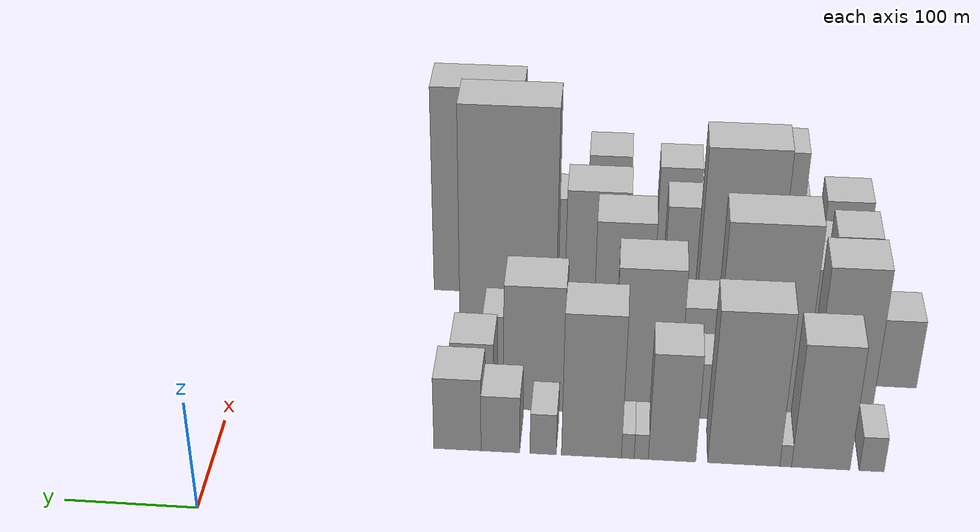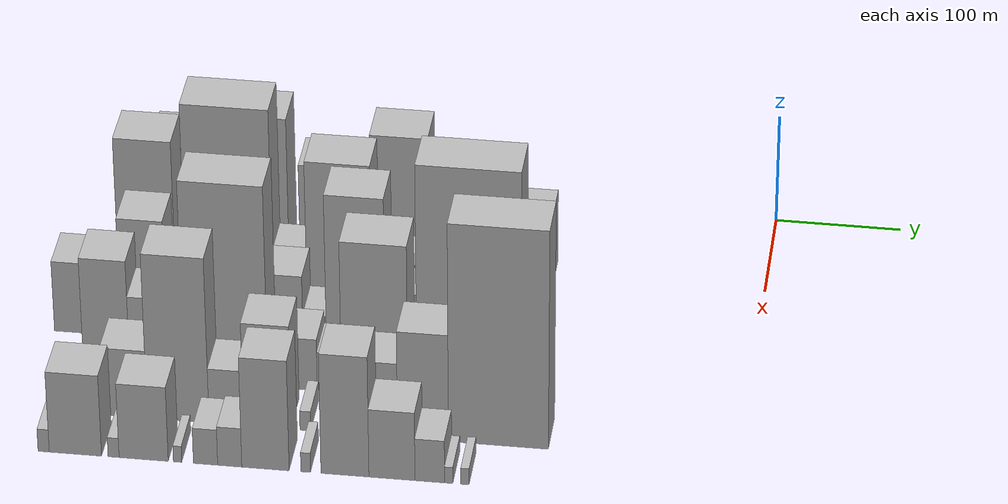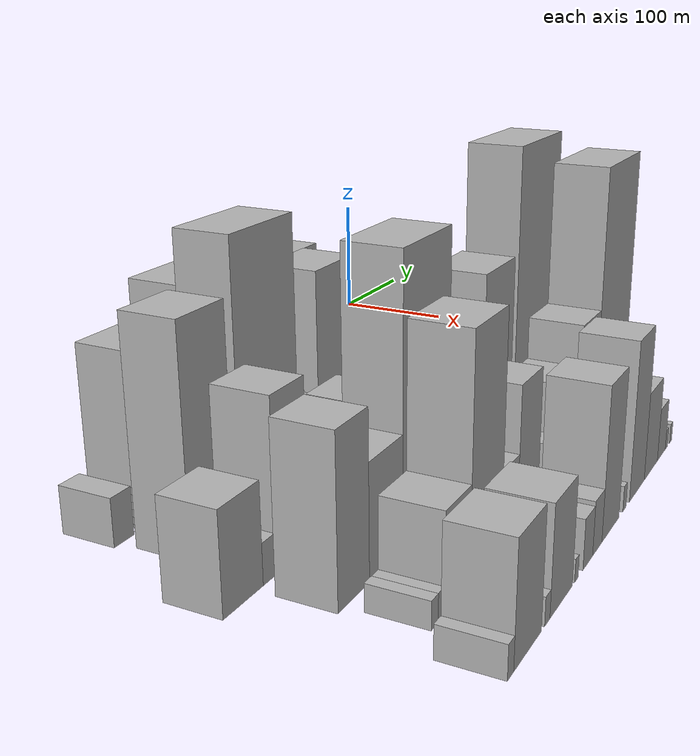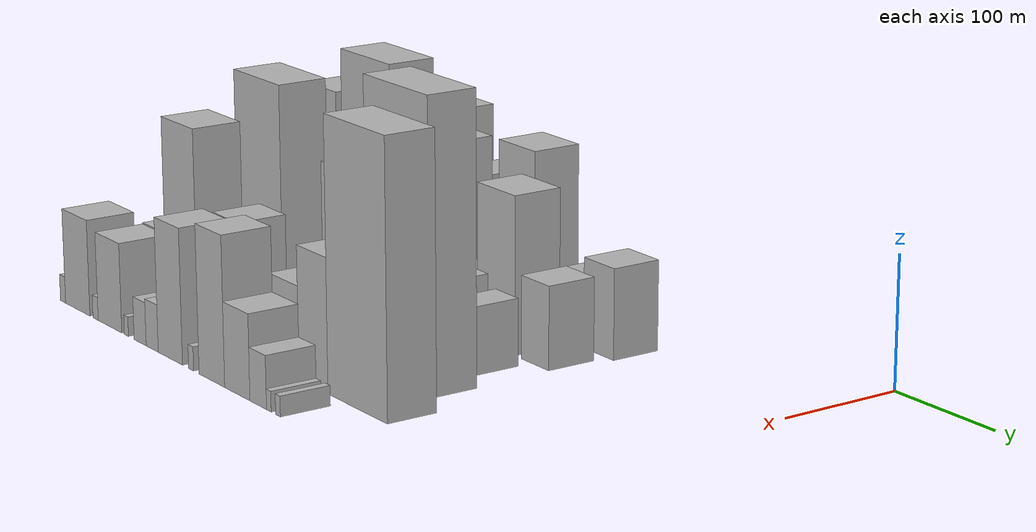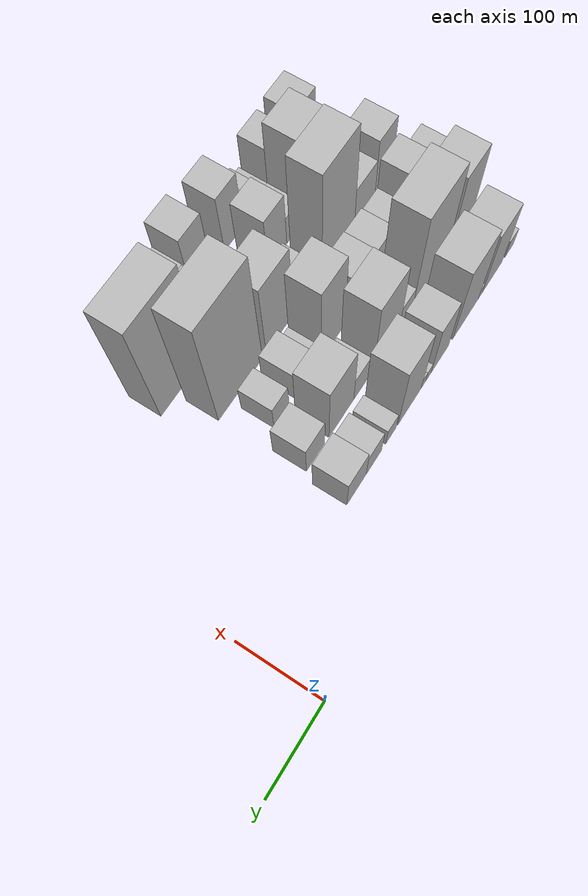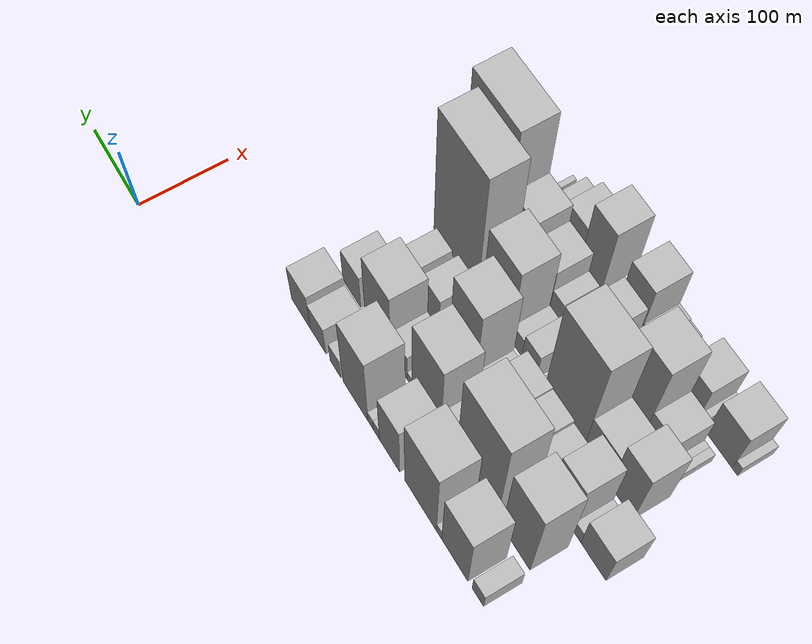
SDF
<sdf version="1.6">
 <world name="default">
  <model name="building_13">
   <static>1</static>
   <pose>100.0000 -501.3110 0 0.000000 0.000000 0.000000</pose>
   <link name="link">
    <pose>0 0 16.50 0 0 0</pose>
    <collision name="collision"><geometry><box><size>40.0000 18.6764 33.0000</size></box></geometry></collision>
    <visual name="visual">
     <cast_shadows>0</cast_shadows>
     <geometry><box><size>40.0000 18.6764 33.0000</size></box></geometry>
     <material>
      <script>
       <uri>model://HANNAS_wall/materials/scripts</uri>
       <uri>model://HANNAS_wall/materials/textures</uri>
       <name>vrc/HANNAS_wall</name>
      </script>
     </material>
    </visual>
   </link>
  </model>
  <model name="building_14">
   <static>1</static>
   <pose>100.0000 -462.9899 0 0.000000 0.000000 0.000000</pose>
   <link name="link">
    <pose>0 0 58.50 0 0 0</pose>
    <collision name="collision"><geometry><box><size>40.0000 43.9658 117.0000</size></box></geometry></collision>
    <visual name="visual">
     <cast_shadows>0</cast_shadows>
     <geometry><box><size>40.0000 43.9658 117.0000</size></box></geometry>
     <material>
      <script>
       <uri>model://HANNAS_wall/materials/scripts</uri>
       <uri>model://HANNAS_wall/materials/textures</uri>
       <name>vrc/HANNAS_wall</name>
      </script>
     </material>
    </visual>
   </link>
  </model>
  <model name="building_15">
   <static>1</static>
   <pose>100.0000 -436.5544 0 0.000000 0.000000 0.000000</pose>
   <link name="link">
    <pose>0 0 10.50 0 0 0</pose>
    <collision name="collision"><geometry><box><size>40.0000 8.9052 21.0000</size></box></geometry></collision>
    <visual name="visual">
     <cast_shadows>0</cast_shadows>
     <geometry><box><size>40.0000 8.9052 21.0000</size></box></geometry>
     <material>
      <script>
       <uri>model://HANNAS_wall/materials/scripts</uri>
       <uri>model://HANNAS_wall/materials/textures</uri>
       <name>vrc/HANNAS_wall</name>
      </script>
     </material>
    </visual>
   </link>
  </model>
  <model name="building_16">
   <static>1</static>
   <pose>100.0000 -404.7646 0 0.000000 0.000000 0.000000</pose>
   <link name="link">
    <pose>0 0 72.00 0 0 0</pose>
    <collision name="collision"><geometry><box><size>40.0000 54.6743 144.0000</size></box></geometry></collision>
    <visual name="visual">
     <cast_shadows>0</cast_shadows>
     <geometry><box><size>40.0000 54.6743 144.0000</size></box></geometry>
     <material>
      <script>
       <uri>model://HANNAS_wall/materials/scripts</uri>
       <uri>model://HANNAS_wall/materials/textures</uri>
       <name>vrc/HANNAS_wall</name>
      </script>
     </material>
    </visual>
   </link>
  </model>
  <model name="building_17">
   <static>1</static>
   <pose>100.0000 -350.3334 0 0.000000 0.000000 0.000000</pose>
   <link name="link">
    <pose>0 0 51.00 0 0 0</pose>
    <collision name="collision"><geometry><box><size>40.0000 36.1881 102.0000</size></box></geometry></collision>
    <visual name="visual">
     <cast_shadows>0</cast_shadows>
     <geometry><box><size>40.0000 36.1881 102.0000</size></box></geometry>
     <material>
      <script>
       <uri>model://HANNAS_wall/materials/scripts</uri>
       <uri>model://HANNAS_wall/materials/textures</uri>
       <name>vrc/HANNAS_wall</name>
      </script>
     </material>
    </visual>
   </link>
  </model>
  <model name="building_18">
   <static>1</static>
   <pose>100.0000 -326.8579 0 0.000000 0.000000 0.000000</pose>
   <link name="link">
    <pose>0 0 12.00 0 0 0</pose>
    <collision name="collision"><geometry><box><size>40.0000 10.7630 24.0000</size></box></geometry></collision>
    <visual name="visual">
     <cast_shadows>0</cast_shadows>
     <geometry><box><size>40.0000 10.7630 24.0000</size></box></geometry>
     <material>
      <script>
       <uri>model://HANNAS_wall/materials/scripts</uri>
       <uri>model://HANNAS_wall/materials/textures</uri>
       <name>vrc/HANNAS_wall</name>
      </script>
     </material>
    </visual>
   </link>
  </model>
  <model name="building_19">
   <static>1</static>
   <pose>100.0000 -316.5767 0 0.000000 0.000000 0.000000</pose>
   <link name="link">
    <pose>0 0 12.00 0 0 0</pose>
    <collision name="collision"><geometry><box><size>40.0000 9.7994 24.0000</size></box></geometry></collision>
    <visual name="visual">
     <cast_shadows>0</cast_shadows>
     <geometry><box><size>40.0000 9.7994 24.0000</size></box></geometry>
     <material>
      <script>
       <uri>model://HANNAS_wall/materials/scripts</uri>
       <uri>model://HANNAS_wall/materials/textures</uri>
       <name>vrc/HANNAS_wall</name>
      </script>
     </material>
    </visual>
   </link>
  </model>
  <model name="building_20">
   <static>1</static>
   <pose>100.0000 -288.7271 0 0.000000 0.000000 0.000000</pose>
   <link name="link">
    <pose>0 0 67.50 0 0 0</pose>
    <collision name="collision"><geometry><box><size>40.0000 45.8998 135.0000</size></box></geometry></collision>
    <visual name="visual">
     <cast_shadows>0</cast_shadows>
     <geometry><box><size>40.0000 45.8998 135.0000</size></box></geometry>
     <material>
      <script>
       <uri>model://HANNAS_wall/materials/scripts</uri>
       <uri>model://HANNAS_wall/materials/textures</uri>
       <name>vrc/HANNAS_wall</name>
      </script>
     </material>
    </visual>
   </link>
  </model>
  <model name="building_21">
   <static>1</static>
   <pose>100.0000 -251.6912 0 0.000000 0.000000 0.000000</pose>
   <link name="link">
    <pose>0 0 19.50 0 0 0</pose>
    <collision name="collision"><geometry><box><size>40.0000 20.1721 39.0000</size></box></geometry></collision>
    <visual name="visual">
     <cast_shadows>0</cast_shadows>
     <geometry><box><size>40.0000 20.1721 39.0000</size></box></geometry>
     <material>
      <script>
       <uri>model://HANNAS_wall/materials/scripts</uri>
       <uri>model://HANNAS_wall/materials/textures</uri>
       <name>vrc/HANNAS_wall</name>
      </script>
     </material>
    </visual>
   </link>
  </model>
  <model name="building_22">
   <static>1</static>
   <pose>100.0000 -218.7330 0 0.000000 0.000000 0.000000</pose>
   <link name="link">
    <pose>0 0 27.00 0 0 0</pose>
    <collision name="collision"><geometry><box><size>40.0000 29.7443 54.0000</size></box></geometry></collision>
    <visual name="visual">
     <cast_shadows>0</cast_shadows>
     <geometry><box><size>40.0000 29.7443 54.0000</size></box></geometry>
     <material>
      <script>
       <uri>model://HANNAS_wall/materials/scripts</uri>
       <uri>model://HANNAS_wall/materials/textures</uri>
       <name>vrc/HANNAS_wall</name>
      </script>
     </material>
    </visual>
   </link>
  </model>
  <model name="building_23">
   <static>1</static>
   <pose>100.0000 -185.6382 0 0.000000 0.000000 0.000000</pose>
   <link name="link">
    <pose>0 0 34.50 0 0 0</pose>
    <collision name="collision"><geometry><box><size>40.0000 36.4452 69.0000</size></box></geometry></collision>
    <visual name="visual">
     <cast_shadows>0</cast_shadows>
     <geometry><box><size>40.0000 36.4452 69.0000</size></box></geometry>
     <material>
      <script>
       <uri>model://HANNAS_wall/materials/scripts</uri>
       <uri>model://HANNAS_wall/materials/textures</uri>
       <name>vrc/HANNAS_wall</name>
      </script>
     </material>
    </visual>
   </link>
  </model>
  <model name="building_61">
   <static>1</static>
   <pose>152.0000 -481.9697 0 0.000000 0.000000 0.000000</pose>
   <link name="link">
    <pose>0 0 75.00 0 0 0</pose>
    <collision name="collision"><geometry><box><size>40.0000 45.4706 150.0000</size></box></geometry></collision>
    <visual name="visual">
     <cast_shadows>0</cast_shadows>
     <geometry><box><size>40.0000 45.4706 150.0000</size></box></geometry>
     <material>
      <script>
       <uri>model://HANNAS_wall/materials/scripts</uri>
       <uri>model://HANNAS_wall/materials/textures</uri>
       <name>vrc/HANNAS_wall</name>
      </script>
     </material>
    </visual>
   </link>
  </model>
  <model name="building_62">
   <static>1</static>
   <pose>152.0000 -416.5960 0 0.000000 0.000000 0.000000</pose>
   <link name="link">
    <pose>0 0 93.00 0 0 0</pose>
    <collision name="collision"><geometry><box><size>40.0000 69.2770 186.0000</size></box></geometry></collision>
    <visual name="visual">
     <cast_shadows>0</cast_shadows>
     <geometry><box><size>40.0000 69.2770 186.0000</size></box></geometry>
     <material>
      <script>
       <uri>model://HANNAS_wall/materials/scripts</uri>
       <uri>model://HANNAS_wall/materials/textures</uri>
       <name>vrc/HANNAS_wall</name>
      </script>
     </material>
    </visual>
   </link>
  </model>
  <model name="building_63">
   <static>1</static>
   <pose>152.0000 -368.4361 0 0.000000 0.000000 0.000000</pose>
   <link name="link">
    <pose>0 0 27.00 0 0 0</pose>
    <collision name="collision"><geometry><box><size>40.0000 27.0428 54.0000</size></box></geometry></collision>
    <visual name="visual">
     <cast_shadows>0</cast_shadows>
     <geometry><box><size>40.0000 27.0428 54.0000</size></box></geometry>
     <material>
      <script>
       <uri>model://HANNAS_wall/materials/scripts</uri>
       <uri>model://HANNAS_wall/materials/textures</uri>
       <name>vrc/HANNAS_wall</name>
      </script>
     </material>
    </visual>
   </link>
  </model>
  <model name="building_64">
   <static>1</static>
   <pose>152.0000 -329.3221 0 0.000000 0.000000 0.000000</pose>
   <link name="link">
    <pose>0 0 70.50 0 0 0</pose>
    <collision name="collision"><geometry><box><size>40.0000 51.1853 141.0000</size></box></geometry></collision>
    <visual name="visual">
     <cast_shadows>0</cast_shadows>
     <geometry><box><size>40.0000 51.1853 141.0000</size></box></geometry>
     <material>
      <script>
       <uri>model://HANNAS_wall/materials/scripts</uri>
       <uri>model://HANNAS_wall/materials/textures</uri>
       <name>vrc/HANNAS_wall</name>
      </script>
     </material>
    </visual>
   </link>
  </model>
  <model name="building_65">
   <static>1</static>
   <pose>152.0000 -299.2770 0 0.000000 0.000000 0.000000</pose>
   <link name="link">
    <pose>0 0 9.00 0 0 0</pose>
    <collision name="collision"><geometry><box><size>40.0000 8.9049 18.0000</size></box></geometry></collision>
    <visual name="visual">
     <cast_shadows>0</cast_shadows>
     <geometry><box><size>40.0000 8.9049 18.0000</size></box></geometry>
     <material>
      <script>
       <uri>model://HANNAS_wall/materials/scripts</uri>
       <uri>model://HANNAS_wall/materials/textures</uri>
       <name>vrc/HANNAS_wall</name>
      </script>
     </material>
    </visual>
   </link>
  </model>
  <model name="building_66">
   <static>1</static>
   <pose>152.0000 -279.8591 0 0.000000 0.000000 0.000000</pose>
   <link name="link">
    <pose>0 0 25.50 0 0 0</pose>
    <collision name="collision"><geometry><box><size>40.0000 29.9308 51.0000</size></box></geometry></collision>
    <visual name="visual">
     <cast_shadows>0</cast_shadows>
     <geometry><box><size>40.0000 29.9308 51.0000</size></box></geometry>
     <material>
      <script>
       <uri>model://HANNAS_wall/materials/scripts</uri>
       <uri>model://HANNAS_wall/materials/textures</uri>
       <name>vrc/HANNAS_wall</name>
      </script>
     </material>
    </visual>
   </link>
  </model>
  <model name="building_67">
   <static>1</static>
   <pose>152.0000 -241.0748 0 0.000000 0.000000 0.000000</pose>
   <link name="link">
    <pose>0 0 60.00 0 0 0</pose>
    <collision name="collision"><geometry><box><size>40.0000 47.6378 120.0000</size></box></geometry></collision>
    <visual name="visual">
     <cast_shadows>0</cast_shadows>
     <geometry><box><size>40.0000 47.6378 120.0000</size></box></geometry>
     <material>
      <script>
       <uri>model://HANNAS_wall/materials/scripts</uri>
       <uri>model://HANNAS_wall/materials/textures</uri>
       <name>vrc/HANNAS_wall</name>
      </script>
     </material>
    </visual>
   </link>
  </model>
  <model name="building_68">
   <static>1</static>
   <pose>152.0000 -192.2192 0 0.000000 0.000000 0.000000</pose>
   <link name="link">
    <pose>0 0 31.50 0 0 0</pose>
    <collision name="collision"><geometry><box><size>40.0000 34.0734 63.0000</size></box></geometry></collision>
    <visual name="visual">
     <cast_shadows>0</cast_shadows>
     <geometry><box><size>40.0000 34.0734 63.0000</size></box></geometry>
     <material>
      <script>
       <uri>model://HANNAS_wall/materials/scripts</uri>
       <uri>model://HANNAS_wall/materials/textures</uri>
       <name>vrc/HANNAS_wall</name>
      </script>
     </material>
    </visual>
   </link>
  </model>
  <model name="building_106">
   <static>1</static>
   <pose>204.0000 -527.0133 0 0.000000 0.000000 0.000000</pose>
   <link name="link">
    <pose>0 0 33.00 0 0 0</pose>
    <collision name="collision"><geometry><box><size>40.0000 39.5864 66.0000</size></box></geometry></collision>
    <visual name="visual">
     <cast_shadows>0</cast_shadows>
     <geometry><box><size>40.0000 39.5864 66.0000</size></box></geometry>
     <material>
      <script>
       <uri>model://HANNAS_wall/materials/scripts</uri>
       <uri>model://HANNAS_wall/materials/textures</uri>
       <name>vrc/HANNAS_wall</name>
      </script>
     </material>
    </visual>
   </link>
  </model>
  <model name="building_107">
   <static>1</static>
   <pose>204.0000 -500.5702 0 0.000000 0.000000 0.000000</pose>
   <link name="link">
    <pose>0 0 13.50 0 0 0</pose>
    <collision name="collision"><geometry><box><size>40.0000 13.2998 27.0000</size></box></geometry></collision>
    <visual name="visual">
     <cast_shadows>0</cast_shadows>
     <geometry><box><size>40.0000 13.2998 27.0000</size></box></geometry>
     <material>
      <script>
       <uri>model://HANNAS_wall/materials/scripts</uri>
       <uri>model://HANNAS_wall/materials/textures</uri>
       <name>vrc/HANNAS_wall</name>
      </script>
     </material>
    </visual>
   </link>
  </model>
  <model name="building_108">
   <static>1</static>
   <pose>204.0000 -475.9146 0 0.000000 0.000000 0.000000</pose>
   <link name="link">
    <pose>0 0 55.50 0 0 0</pose>
    <collision name="collision"><geometry><box><size>40.0000 36.0115 111.0000</size></box></geometry></collision>
    <visual name="visual">
     <cast_shadows>0</cast_shadows>
     <geometry><box><size>40.0000 36.0115 111.0000</size></box></geometry>
     <material>
      <script>
       <uri>model://HANNAS_wall/materials/scripts</uri>
       <uri>model://HANNAS_wall/materials/textures</uri>
       <name>vrc/HANNAS_wall</name>
      </script>
     </material>
    </visual>
   </link>
  </model>
  <model name="building_109">
   <static>1</static>
   <pose>204.0000 -441.5620 0 0.000000 0.000000 0.000000</pose>
   <link name="link">
    <pose>0 0 30.00 0 0 0</pose>
    <collision name="collision"><geometry><box><size>40.0000 32.6936 60.0000</size></box></geometry></collision>
    <visual name="visual">
     <cast_shadows>0</cast_shadows>
     <geometry><box><size>40.0000 32.6936 60.0000</size></box></geometry>
     <material>
      <script>
       <uri>model://HANNAS_wall/materials/scripts</uri>
       <uri>model://HANNAS_wall/materials/textures</uri>
       <name>vrc/HANNAS_wall</name>
      </script>
     </material>
    </visual>
   </link>
  </model>
  <model name="building_110">
   <static>1</static>
   <pose>204.0000 -408.0279 0 0.000000 0.000000 0.000000</pose>
   <link name="link">
    <pose>0 0 33.00 0 0 0</pose>
    <collision name="collision"><geometry><box><size>40.0000 34.3746 66.0000</size></box></geometry></collision>
    <visual name="visual">
     <cast_shadows>0</cast_shadows>
     <geometry><box><size>40.0000 34.3746 66.0000</size></box></geometry>
     <material>
      <script>
       <uri>model://HANNAS_wall/materials/scripts</uri>
       <uri>model://HANNAS_wall/materials/textures</uri>
       <name>vrc/HANNAS_wall</name>
      </script>
     </material>
    </visual>
   </link>
  </model>
  <model name="building_111">
   <static>1</static>
   <pose>204.0000 -370.3814 0 0.000000 0.000000 0.000000</pose>
   <link name="link">
    <pose>0 0 34.50 0 0 0</pose>
    <collision name="collision"><geometry><box><size>40.0000 40.9183 69.0000</size></box></geometry></collision>
    <visual name="visual">
     <cast_shadows>0</cast_shadows>
     <geometry><box><size>40.0000 40.9183 69.0000</size></box></geometry>
     <material>
      <script>
       <uri>model://HANNAS_wall/materials/scripts</uri>
       <uri>model://HANNAS_wall/materials/textures</uri>
       <name>vrc/HANNAS_wall</name>
      </script>
     </material>
    </visual>
   </link>
  </model>
  <model name="building_112">
   <static>1</static>
   <pose>204.0000 -340.7332 0 0.000000 0.000000 0.000000</pose>
   <link name="link">
    <pose>0 0 16.50 0 0 0</pose>
    <collision name="collision"><geometry><box><size>40.0000 18.3780 33.0000</size></box></geometry></collision>
    <visual name="visual">
     <cast_shadows>0</cast_shadows>
     <geometry><box><size>40.0000 18.3780 33.0000</size></box></geometry>
     <material>
      <script>
       <uri>model://HANNAS_wall/materials/scripts</uri>
       <uri>model://HANNAS_wall/materials/textures</uri>
       <name>vrc/HANNAS_wall</name>
      </script>
     </material>
    </visual>
   </link>
  </model>
  <model name="building_113">
   <static>1</static>
   <pose>204.0000 -308.4906 0 0.000000 0.000000 0.000000</pose>
   <link name="link">
    <pose>0 0 73.50 0 0 0</pose>
    <collision name="collision"><geometry><box><size>40.0000 46.1072 147.0000</size></box></geometry></collision>
    <visual name="visual">
     <cast_shadows>0</cast_shadows>
     <geometry><box><size>40.0000 46.1072 147.0000</size></box></geometry>
     <material>
      <script>
       <uri>model://HANNAS_wall/materials/scripts</uri>
       <uri>model://HANNAS_wall/materials/textures</uri>
       <name>vrc/HANNAS_wall</name>
      </script>
     </material>
    </visual>
   </link>
  </model>
  <model name="building_114">
   <static>1</static>
   <pose>204.0000 -276.1419 0 0.000000 0.000000 0.000000</pose>
   <link name="link">
    <pose>0 0 16.50 0 0 0</pose>
    <collision name="collision"><geometry><box><size>40.0000 18.5903 33.0000</size></box></geometry></collision>
    <visual name="visual">
     <cast_shadows>0</cast_shadows>
     <geometry><box><size>40.0000 18.5903 33.0000</size></box></geometry>
     <material>
      <script>
       <uri>model://HANNAS_wall/materials/scripts</uri>
       <uri>model://HANNAS_wall/materials/textures</uri>
       <name>vrc/HANNAS_wall</name>
      </script>
     </material>
    </visual>
   </link>
  </model>
  <model name="building_115">
   <static>1</static>
   <pose>204.0000 -250.4800 0 0.000000 0.000000 0.000000</pose>
   <link name="link">
    <pose>0 0 30.00 0 0 0</pose>
    <collision name="collision"><geometry><box><size>40.0000 32.7336 60.0000</size></box></geometry></collision>
    <visual name="visual">
     <cast_shadows>0</cast_shadows>
     <geometry><box><size>40.0000 32.7336 60.0000</size></box></geometry>
     <material>
      <script>
       <uri>model://HANNAS_wall/materials/scripts</uri>
       <uri>model://HANNAS_wall/materials/textures</uri>
       <name>vrc/HANNAS_wall</name>
      </script>
     </material>
    </visual>
   </link>
  </model>
  <model name="building_116">
   <static>1</static>
   <pose>204.0000 -210.1144 0 0.000000 0.000000 0.000000</pose>
   <link name="link">
    <pose>0 0 25.50 0 0 0</pose>
    <collision name="collision"><geometry><box><size>40.0000 27.9976 51.0000</size></box></geometry></collision>
    <visual name="visual">
     <cast_shadows>0</cast_shadows>
     <geometry><box><size>40.0000 27.9976 51.0000</size></box></geometry>
     <material>
      <script>
       <uri>model://HANNAS_wall/materials/scripts</uri>
       <uri>model://HANNAS_wall/materials/textures</uri>
       <name>vrc/HANNAS_wall</name>
      </script>
     </material>
    </visual>
   </link>
  </model>
  <model name="building_162">
   <static>1</static>
   <pose>256.0000 -495.3799 0 0.000000 0.000000 0.000000</pose>
   <link name="link">
    <pose>0 0 54.00 0 0 0</pose>
    <collision name="collision"><geometry><box><size>40.0000 36.3558 108.0000</size></box></geometry></collision>
    <visual name="visual">
     <cast_shadows>0</cast_shadows>
     <geometry><box><size>40.0000 36.3558 108.0000</size></box></geometry>
     <material>
      <script>
       <uri>model://HANNAS_wall/materials/scripts</uri>
       <uri>model://HANNAS_wall/materials/textures</uri>
       <name>vrc/HANNAS_wall</name>
      </script>
     </material>
    </visual>
   </link>
  </model>
  <model name="building_163">
   <static>1</static>
   <pose>256.0000 -455.9903 0 0.000000 0.000000 0.000000</pose>
   <link name="link">
    <pose>0 0 37.50 0 0 0</pose>
    <collision name="collision"><geometry><box><size>40.0000 42.4236 75.0000</size></box></geometry></collision>
    <visual name="visual">
     <cast_shadows>0</cast_shadows>
     <geometry><box><size>40.0000 42.4236 75.0000</size></box></geometry>
     <material>
      <script>
       <uri>model://HANNAS_wall/materials/scripts</uri>
       <uri>model://HANNAS_wall/materials/textures</uri>
       <name>vrc/HANNAS_wall</name>
      </script>
     </material>
    </visual>
   </link>
  </model>
  <model name="building_164">
   <static>1</static>
   <pose>256.0000 -402.0012 0 0.000000 0.000000 0.000000</pose>
   <link name="link">
    <pose>0 0 93.00 0 0 0</pose>
    <collision name="collision"><geometry><box><size>40.0000 65.5546 186.0000</size></box></geometry></collision>
    <visual name="visual">
     <cast_shadows>0</cast_shadows>
     <geometry><box><size>40.0000 65.5546 186.0000</size></box></geometry>
     <material>
      <script>
       <uri>model://HANNAS_wall/materials/scripts</uri>
       <uri>model://HANNAS_wall/materials/textures</uri>
       <name>vrc/HANNAS_wall</name>
      </script>
     </material>
    </visual>
   </link>
  </model>
  <model name="building_165">
   <static>1</static>
   <pose>256.0000 -365.7329 0 0.000000 0.000000 0.000000</pose>
   <link name="link">
    <pose>0 0 7.50 0 0 0</pose>
    <collision name="collision"><geometry><box><size>40.0000 6.9820 15.0000</size></box></geometry></collision>
    <visual name="visual">
     <cast_shadows>0</cast_shadows>
     <geometry><box><size>40.0000 6.9820 15.0000</size></box></geometry>
     <material>
      <script>
       <uri>model://HANNAS_wall/materials/scripts</uri>
       <uri>model://HANNAS_wall/materials/textures</uri>
       <name>vrc/HANNAS_wall</name>
      </script>
     </material>
    </visual>
   </link>
  </model>
  <model name="building_166">
   <static>1</static>
   <pose>256.0000 -343.5015 0 0.000000 0.000000 0.000000</pose>
   <link name="link">
    <pose>0 0 24.00 0 0 0</pose>
    <collision name="collision"><geometry><box><size>40.0000 25.4808 48.0000</size></box></geometry></collision>
    <visual name="visual">
     <cast_shadows>0</cast_shadows>
     <geometry><box><size>40.0000 25.4808 48.0000</size></box></geometry>
     <material>
      <script>
       <uri>model://HANNAS_wall/materials/scripts</uri>
       <uri>model://HANNAS_wall/materials/textures</uri>
       <name>vrc/HANNAS_wall</name>
      </script>
     </material>
    </visual>
   </link>
  </model>
  <model name="building_167">
   <static>1</static>
   <pose>256.0000 -321.2631 0 0.000000 0.000000 0.000000</pose>
   <link name="link">
    <pose>0 0 18.00 0 0 0</pose>
    <collision name="collision"><geometry><box><size>40.0000 18.9958 36.0000</size></box></geometry></collision>
    <visual name="visual">
     <cast_shadows>0</cast_shadows>
     <geometry><box><size>40.0000 18.9958 36.0000</size></box></geometry>
     <material>
      <script>
       <uri>model://HANNAS_wall/materials/scripts</uri>
       <uri>model://HANNAS_wall/materials/textures</uri>
       <name>vrc/HANNAS_wall</name>
      </script>
     </material>
    </visual>
   </link>
  </model>
  <model name="building_168">
   <static>1</static>
   <pose>256.0000 -286.0108 0 0.000000 0.000000 0.000000</pose>
   <link name="link">
    <pose>0 0 70.50 0 0 0</pose>
    <collision name="collision"><geometry><box><size>40.0000 51.5088 141.0000</size></box></geometry></collision>
    <visual name="visual">
     <cast_shadows>0</cast_shadows>
     <geometry><box><size>40.0000 51.5088 141.0000</size></box></geometry>
     <material>
      <script>
       <uri>model://HANNAS_wall/materials/scripts</uri>
       <uri>model://HANNAS_wall/materials/textures</uri>
       <name>vrc/HANNAS_wall</name>
      </script>
     </material>
    </visual>
   </link>
  </model>
  <model name="building_169">
   <static>1</static>
   <pose>256.0000 -212.9018 0 0.000000 0.000000 0.000000</pose>
   <link name="link">
    <pose>0 0 108.00 0 0 0</pose>
    <collision name="collision"><geometry><box><size>40.0000 80.7092 216.0000</size></box></geometry></collision>
    <visual name="visual">
     <cast_shadows>0</cast_shadows>
     <geometry><box><size>40.0000 80.7092 216.0000</size></box></geometry>
     <material>
      <script>
       <uri>model://HANNAS_wall/materials/scripts</uri>
       <uri>model://HANNAS_wall/materials/textures</uri>
       <name>vrc/HANNAS_wall</name>
      </script>
     </material>
    </visual>
   </link>
  </model>
  <model name="building_214">
   <static>1</static>
   <pose>308.0000 -501.4362 0 0.000000 0.000000 0.000000</pose>
   <link name="link">
    <pose>0 0 9.00 0 0 0</pose>
    <collision name="collision"><geometry><box><size>40.0000 8.6800 18.0000</size></box></geometry></collision>
    <visual name="visual">
     <cast_shadows>0</cast_shadows>
     <geometry><box><size>40.0000 8.6800 18.0000</size></box></geometry>
     <material>
      <script>
       <uri>model://HANNAS_wall/materials/scripts</uri>
       <uri>model://HANNAS_wall/materials/textures</uri>
       <name>vrc/HANNAS_wall</name>
      </script>
     </material>
    </visual>
   </link>
  </model>
  <model name="building_215">
   <static>1</static>
   <pose>308.0000 -493.1893 0 0.000000 0.000000 0.000000</pose>
   <link name="link">
    <pose>0 0 9.00 0 0 0</pose>
    <collision name="collision"><geometry><box><size>40.0000 7.8140 18.0000</size></box></geometry></collision>
    <visual name="visual">
     <cast_shadows>0</cast_shadows>
     <geometry><box><size>40.0000 7.8140 18.0000</size></box></geometry>
     <material>
      <script>
       <uri>model://HANNAS_wall/materials/scripts</uri>
       <uri>model://HANNAS_wall/materials/textures</uri>
       <name>vrc/HANNAS_wall</name>
      </script>
     </material>
    </visual>
   </link>
  </model>
  <model name="building_216">
   <static>1</static>
   <pose>308.0000 -471.7963 0 0.000000 0.000000 0.000000</pose>
   <link name="link">
    <pose>0 0 31.50 0 0 0</pose>
    <collision name="collision"><geometry><box><size>40.0000 34.9720 63.0000</size></box></geometry></collision>
    <visual name="visual">
     <cast_shadows>0</cast_shadows>
     <geometry><box><size>40.0000 34.9720 63.0000</size></box></geometry>
     <material>
      <script>
       <uri>model://HANNAS_wall/materials/scripts</uri>
       <uri>model://HANNAS_wall/materials/textures</uri>
       <name>vrc/HANNAS_wall</name>
      </script>
     </material>
    </visual>
   </link>
  </model>
  <model name="building_217">
   <static>1</static>
   <pose>308.0000 -430.3518 0 0.000000 0.000000 0.000000</pose>
   <link name="link">
    <pose>0 0 76.50 0 0 0</pose>
    <collision name="collision"><geometry><box><size>40.0000 47.9169 153.0000</size></box></geometry></collision>
    <visual name="visual">
     <cast_shadows>0</cast_shadows>
     <geometry><box><size>40.0000 47.9169 153.0000</size></box></geometry>
     <material>
      <script>
       <uri>model://HANNAS_wall/materials/scripts</uri>
       <uri>model://HANNAS_wall/materials/textures</uri>
       <name>vrc/HANNAS_wall</name>
      </script>
     </material>
    </visual>
   </link>
  </model>
  <model name="building_218">
   <static>1</static>
   <pose>308.0000 -393.0807 0 0.000000 0.000000 0.000000</pose>
   <link name="link">
    <pose>0 0 25.50 0 0 0</pose>
    <collision name="collision"><geometry><box><size>40.0000 26.6255 51.0000</size></box></geometry></collision>
    <visual name="visual">
     <cast_shadows>0</cast_shadows>
     <geometry><box><size>40.0000 26.6255 51.0000</size></box></geometry>
     <material>
      <script>
       <uri>model://HANNAS_wall/materials/scripts</uri>
       <uri>model://HANNAS_wall/materials/textures</uri>
       <name>vrc/HANNAS_wall</name>
      </script>
     </material>
    </visual>
   </link>
  </model>
  <model name="building_219">
   <static>1</static>
   <pose>308.0000 -361.3988 0 0.000000 0.000000 0.000000</pose>
   <link name="link">
    <pose>0 0 48.00 0 0 0</pose>
    <collision name="collision"><geometry><box><size>40.0000 36.7382 96.0000</size></box></geometry></collision>
    <visual name="visual">
     <cast_shadows>0</cast_shadows>
     <geometry><box><size>40.0000 36.7382 96.0000</size></box></geometry>
     <material>
      <script>
       <uri>model://HANNAS_wall/materials/scripts</uri>
       <uri>model://HANNAS_wall/materials/textures</uri>
       <name>vrc/HANNAS_wall</name>
      </script>
     </material>
    </visual>
   </link>
  </model>
  <model name="building_220">
   <static>1</static>
   <pose>308.0000 -331.8569 0 0.000000 0.000000 0.000000</pose>
   <link name="link">
    <pose>0 0 9.00 0 0 0</pose>
    <collision name="collision"><geometry><box><size>40.0000 8.3457 18.0000</size></box></geometry></collision>
    <visual name="visual">
     <cast_shadows>0</cast_shadows>
     <geometry><box><size>40.0000 8.3457 18.0000</size></box></geometry>
     <material>
      <script>
       <uri>model://HANNAS_wall/materials/scripts</uri>
       <uri>model://HANNAS_wall/materials/textures</uri>
       <name>vrc/HANNAS_wall</name>
      </script>
     </material>
    </visual>
   </link>
  </model>
  <model name="building_221">
   <static>1</static>
   <pose>308.0000 -309.5176 0 0.000000 0.000000 0.000000</pose>
   <link name="link">
    <pose>0 0 16.50 0 0 0</pose>
    <collision name="collision"><geometry><box><size>40.0000 18.3329 33.0000</size></box></geometry></collision>
    <visual name="visual">
     <cast_shadows>0</cast_shadows>
     <geometry><box><size>40.0000 18.3329 33.0000</size></box></geometry>
     <material>
      <script>
       <uri>model://HANNAS_wall/materials/scripts</uri>
       <uri>model://HANNAS_wall/materials/textures</uri>
       <name>vrc/HANNAS_wall</name>
      </script>
     </material>
    </visual>
   </link>
  </model>
  <model name="building_222">
   <static>1</static>
   <pose>308.0000 -280.6073 0 0.000000 0.000000 0.000000</pose>
   <link name="link">
    <pose>0 0 34.50 0 0 0</pose>
    <collision name="collision"><geometry><box><size>40.0000 39.4878 69.0000</size></box></geometry></collision>
    <visual name="visual">
     <cast_shadows>0</cast_shadows>
     <geometry><box><size>40.0000 39.4878 69.0000</size></box></geometry>
     <material>
      <script>
       <uri>model://HANNAS_wall/materials/scripts</uri>
       <uri>model://HANNAS_wall/materials/textures</uri>
       <name>vrc/HANNAS_wall</name>
      </script>
     </material>
    </visual>
   </link>
  </model>
  <model name="building_223">
   <static>1</static>
   <pose>308.0000 -241.3115 0 0.000000 0.000000 0.000000</pose>
   <link name="link">
    <pose>0 0 49.50 0 0 0</pose>
    <collision name="collision"><geometry><box><size>40.0000 39.1037 99.0000</size></box></geometry></collision>
    <visual name="visual">
     <cast_shadows>0</cast_shadows>
     <geometry><box><size>40.0000 39.1037 99.0000</size></box></geometry>
     <material>
      <script>
       <uri>model://HANNAS_wall/materials/scripts</uri>
       <uri>model://HANNAS_wall/materials/textures</uri>
       <name>vrc/HANNAS_wall</name>
      </script>
     </material>
    </visual>
   </link>
  </model>
  <model name="building_224">
   <static>1</static>
   <pose>308.0000 -183.4188 0 0.000000 0.000000 0.000000</pose>
   <link name="link">
    <pose>0 0 100.50 0 0 0</pose>
    <collision name="collision"><geometry><box><size>40.0000 76.6819 201.0000</size></box></geometry></collision>
    <visual name="visual">
     <cast_shadows>0</cast_shadows>
     <geometry><box><size>40.0000 76.6819 201.0000</size></box></geometry>
     <material>
      <script>
       <uri>model://HANNAS_wall/materials/scripts</uri>
       <uri>model://HANNAS_wall/materials/textures</uri>
       <name>vrc/HANNAS_wall</name>
      </script>
     </material>
    </visual>
   </link>
  </model>
  <model name="building_269">
   <static>1</static>
   <pose>360.0000 -524.7881 0 0.000000 0.000000 0.000000</pose>
   <link name="link">
    <pose>0 0 10.50 0 0 0</pose>
    <collision name="collision"><geometry><box><size>40.0000 8.6271 21.0000</size></box></geometry></collision>
    <visual name="visual">
     <cast_shadows>0</cast_shadows>
     <geometry><box><size>40.0000 8.6271 21.0000</size></box></geometry>
     <material>
      <script>
       <uri>model://HANNAS_wall/materials/scripts</uri>
       <uri>model://HANNAS_wall/materials/textures</uri>
       <name>vrc/HANNAS_wall</name>
      </script>
     </material>
    </visual>
   </link>
  </model>
  <model name="building_270">
   <static>1</static>
   <pose>360.0000 -500.3106 0 0.000000 0.000000 0.000000</pose>
   <link name="link">
    <pose>0 0 37.50 0 0 0</pose>
    <collision name="collision"><geometry><box><size>40.0000 40.3280 75.0000</size></box></geometry></collision>
    <visual name="visual">
     <cast_shadows>0</cast_shadows>
     <geometry><box><size>40.0000 40.3280 75.0000</size></box></geometry>
     <material>
      <script>
       <uri>model://HANNAS_wall/materials/scripts</uri>
       <uri>model://HANNAS_wall/materials/textures</uri>
       <name>vrc/HANNAS_wall</name>
      </script>
     </material>
    </visual>
   </link>
  </model>
  <model name="building_271">
   <static>1</static>
   <pose>360.0000 -470.9140 0 0.000000 0.000000 0.000000</pose>
   <link name="link">
    <pose>0 0 9.00 0 0 0</pose>
    <collision name="collision"><geometry><box><size>40.0000 8.4651 18.0000</size></box></geometry></collision>
    <visual name="visual">
     <cast_shadows>0</cast_shadows>
     <geometry><box><size>40.0000 8.4651 18.0000</size></box></geometry>
     <material>
      <script>
       <uri>model://HANNAS_wall/materials/scripts</uri>
       <uri>model://HANNAS_wall/materials/textures</uri>
       <name>vrc/HANNAS_wall</name>
      </script>
     </material>
    </visual>
   </link>
  </model>
  <model name="building_272">
   <static>1</static>
   <pose>360.0000 -447.7595 0 0.000000 0.000000 0.000000</pose>
   <link name="link">
    <pose>0 0 34.50 0 0 0</pose>
    <collision name="collision"><geometry><box><size>40.0000 37.8439 69.0000</size></box></geometry></collision>
    <visual name="visual">
     <cast_shadows>0</cast_shadows>
     <geometry><box><size>40.0000 37.8439 69.0000</size></box></geometry>
     <material>
      <script>
       <uri>model://HANNAS_wall/materials/scripts</uri>
       <uri>model://HANNAS_wall/materials/textures</uri>
       <name>vrc/HANNAS_wall</name>
      </script>
     </material>
    </visual>
   </link>
  </model>
  <model name="building_273">
   <static>1</static>
   <pose>360.0000 -421.6633 0 0.000000 0.000000 0.000000</pose>
   <link name="link">
    <pose>0 0 7.50 0 0 0</pose>
    <collision name="collision"><geometry><box><size>40.0000 6.3486 15.0000</size></box></geometry></collision>
    <visual name="visual">
     <cast_shadows>0</cast_shadows>
     <geometry><box><size>40.0000 6.3486 15.0000</size></box></geometry>
     <material>
      <script>
       <uri>model://HANNAS_wall/materials/scripts</uri>
       <uri>model://HANNAS_wall/materials/textures</uri>
       <name>vrc/HANNAS_wall</name>
      </script>
     </material>
    </visual>
   </link>
  </model>
  <model name="building_274">
   <static>1</static>
   <pose>360.0000 -400.1943 0 0.000000 0.000000 0.000000</pose>
   <link name="link">
    <pose>0 0 16.50 0 0 0</pose>
    <collision name="collision"><geometry><box><size>40.0000 18.5894 33.0000</size></box></geometry></collision>
    <visual name="visual">
     <cast_shadows>0</cast_shadows>
     <geometry><box><size>40.0000 18.5894 33.0000</size></box></geometry>
     <material>
      <script>
       <uri>model://HANNAS_wall/materials/scripts</uri>
       <uri>model://HANNAS_wall/materials/textures</uri>
       <name>vrc/HANNAS_wall</name>
      </script>
     </material>
    </visual>
   </link>
  </model>
  <model name="building_275">
   <static>1</static>
   <pose>360.0000 -381.6483 0 0.000000 0.000000 0.000000</pose>
   <link name="link">
    <pose>0 0 18.00 0 0 0</pose>
    <collision name="collision"><geometry><box><size>40.0000 18.5027 36.0000</size></box></geometry></collision>
    <visual name="visual">
     <cast_shadows>0</cast_shadows>
     <geometry><box><size>40.0000 18.5027 36.0000</size></box></geometry>
     <material>
      <script>
       <uri>model://HANNAS_wall/materials/scripts</uri>
       <uri>model://HANNAS_wall/materials/textures</uri>
       <name>vrc/HANNAS_wall</name>
      </script>
     </material>
    </visual>
   </link>
  </model>
  <model name="building_276">
   <static>1</static>
   <pose>360.0000 -354.2807 0 0.000000 0.000000 0.000000</pose>
   <link name="link">
    <pose>0 0 51.00 0 0 0</pose>
    <collision name="collision"><geometry><box><size>40.0000 36.2324 102.0000</size></box></geometry></collision>
    <visual name="visual">
     <cast_shadows>0</cast_shadows>
     <geometry><box><size>40.0000 36.2324 102.0000</size></box></geometry>
     <material>
      <script>
       <uri>model://HANNAS_wall/materials/scripts</uri>
       <uri>model://HANNAS_wall/materials/textures</uri>
       <name>vrc/HANNAS_wall</name>
      </script>
     </material>
    </visual>
   </link>
  </model>
  <model name="building_277">
   <static>1</static>
   <pose>360.0000 -323.4983 0 0.000000 0.000000 0.000000</pose>
   <link name="link">
    <pose>0 0 9.00 0 0 0</pose>
    <collision name="collision"><geometry><box><size>40.0000 7.3324 18.0000</size></box></geometry></collision>
    <visual name="visual">
     <cast_shadows>0</cast_shadows>
     <geometry><box><size>40.0000 7.3324 18.0000</size></box></geometry>
     <material>
      <script>
       <uri>model://HANNAS_wall/materials/scripts</uri>
       <uri>model://HANNAS_wall/materials/textures</uri>
       <name>vrc/HANNAS_wall</name>
      </script>
     </material>
    </visual>
   </link>
  </model>
  <model name="building_278">
   <static>1</static>
   <pose>360.0000 -293.5209 0 0.000000 0.000000 0.000000</pose>
   <link name="link">
    <pose>0 0 55.50 0 0 0</pose>
    <collision name="collision"><geometry><box><size>40.0000 36.6226 111.0000</size></box></geometry></collision>
    <visual name="visual">
     <cast_shadows>0</cast_shadows>
     <geometry><box><size>40.0000 36.6226 111.0000</size></box></geometry>
     <material>
      <script>
       <uri>model://HANNAS_wall/materials/scripts</uri>
       <uri>model://HANNAS_wall/materials/textures</uri>
       <name>vrc/HANNAS_wall</name>
      </script>
     </material>
    </visual>
   </link>
  </model>
  <model name="building_279">
   <static>1</static>
   <pose>360.0000 -257.6784 0 0.000000 0.000000 0.000000</pose>
   <link name="link">
    <pose>0 0 31.50 0 0 0</pose>
    <collision name="collision"><geometry><box><size>40.0000 35.0624 63.0000</size></box></geometry></collision>
    <visual name="visual">
     <cast_shadows>0</cast_shadows>
     <geometry><box><size>40.0000 35.0624 63.0000</size></box></geometry>
     <material>
      <script>
       <uri>model://HANNAS_wall/materials/scripts</uri>
       <uri>model://HANNAS_wall/materials/textures</uri>
       <name>vrc/HANNAS_wall</name>
      </script>
     </material>
    </visual>
   </link>
  </model>
  <model name="building_280">
   <static>1</static>
   <pose>360.0000 -228.9050 0 0.000000 0.000000 0.000000</pose>
   <link name="link">
    <pose>0 0 19.50 0 0 0</pose>
    <collision name="collision"><geometry><box><size>40.0000 22.4845 39.0000</size></box></geometry></collision>
    <visual name="visual">
     <cast_shadows>0</cast_shadows>
     <geometry><box><size>40.0000 22.4845 39.0000</size></box></geometry>
     <material>
      <script>
       <uri>model://HANNAS_wall/materials/scripts</uri>
       <uri>model://HANNAS_wall/materials/textures</uri>
       <name>vrc/HANNAS_wall</name>
      </script>
     </material>
    </visual>
   </link>
  </model>
  <model name="building_281">
   <static>1</static>
   <pose>360.0000 -214.4883 0 0.000000 0.000000 0.000000</pose>
   <link name="link">
    <pose>0 0 7.50 0 0 0</pose>
    <collision name="collision"><geometry><box><size>40.0000 6.3487 15.0000</size></box></geometry></collision>
    <visual name="visual">
     <cast_shadows>0</cast_shadows>
     <geometry><box><size>40.0000 6.3487 15.0000</size></box></geometry>
     <material>
      <script>
       <uri>model://HANNAS_wall/materials/scripts</uri>
       <uri>model://HANNAS_wall/materials/textures</uri>
       <name>vrc/HANNAS_wall</name>
      </script>
     </material>
    </visual>
   </link>
  </model>
  <model name="building_282">
   <static>1</static>
   <pose>360.0000 -202.1314 0 0.000000 0.000000 0.000000</pose>
   <link name="link">
    <pose>0 0 7.50 0 0 0</pose>
    <collision name="collision"><geometry><box><size>40.0000 6.3653 15.0000</size></box></geometry></collision>
    <visual name="visual">
     <cast_shadows>0</cast_shadows>
     <geometry><box><size>40.0000 6.3653 15.0000</size></box></geometry>
     <material>
      <script>
       <uri>model://HANNAS_wall/materials/scripts</uri>
       <uri>model://HANNAS_wall/materials/textures</uri>
       <name>vrc/HANNAS_wall</name>
      </script>
     </material>
    </visual>
   </link>
  </model>
 </world>
</sdf>
